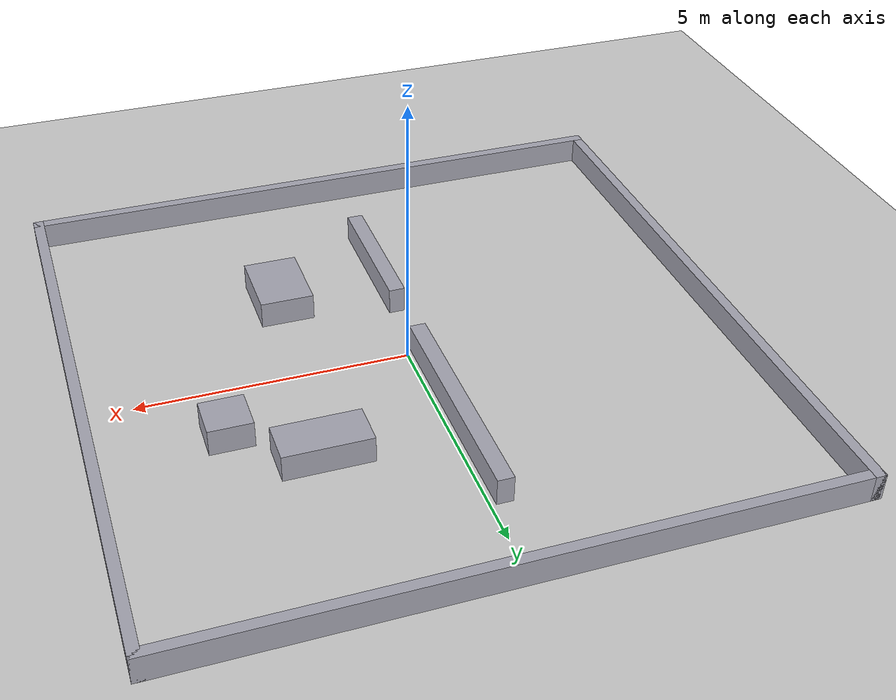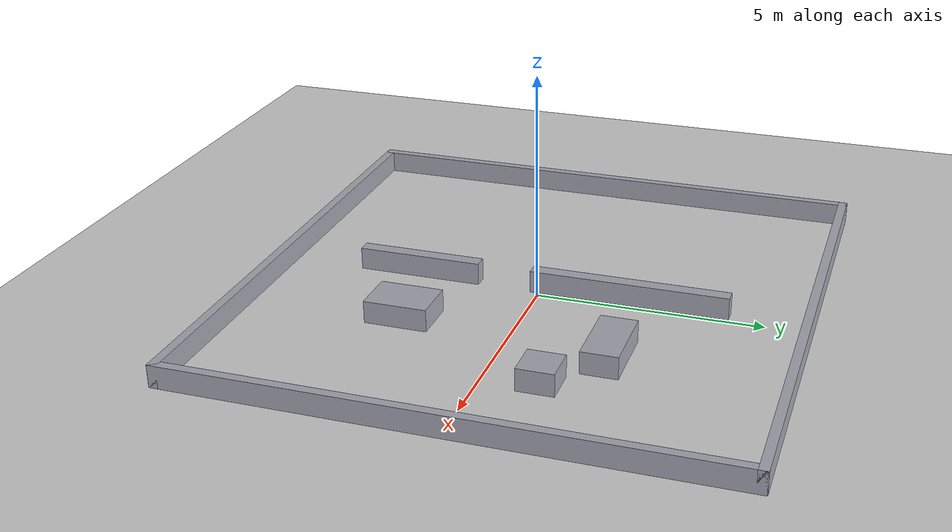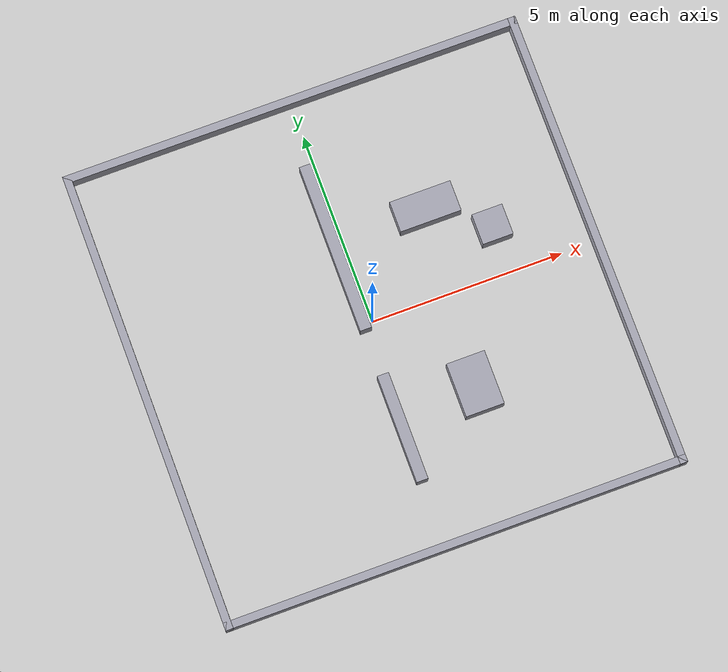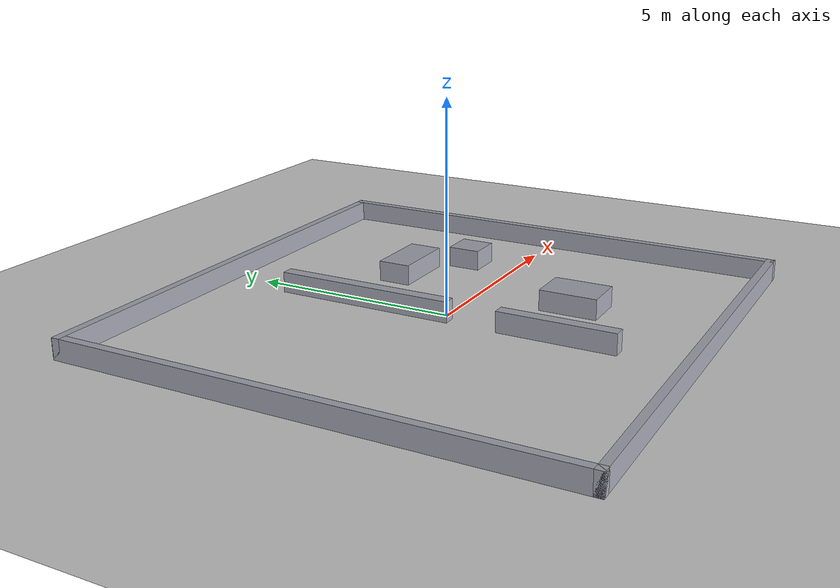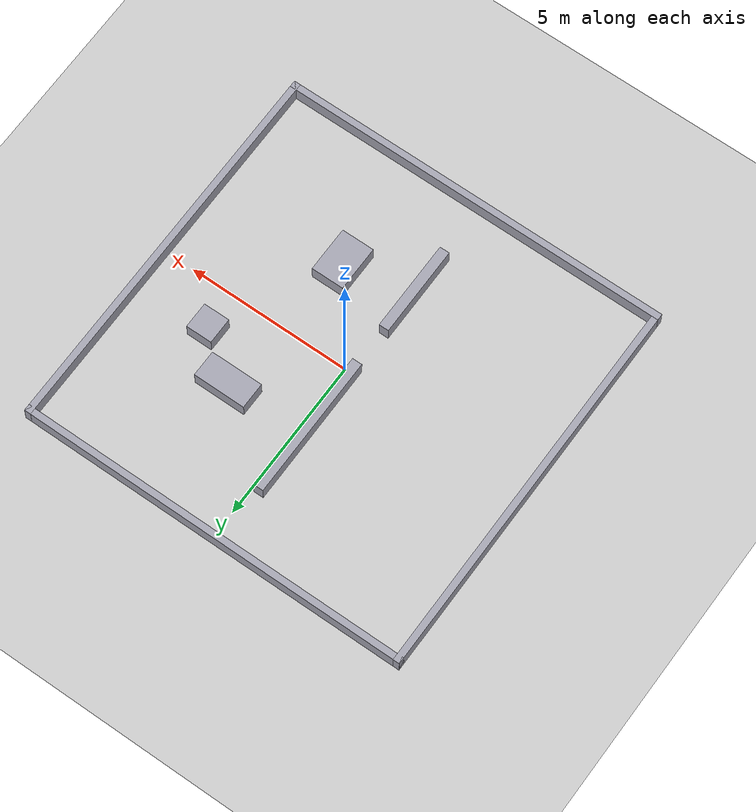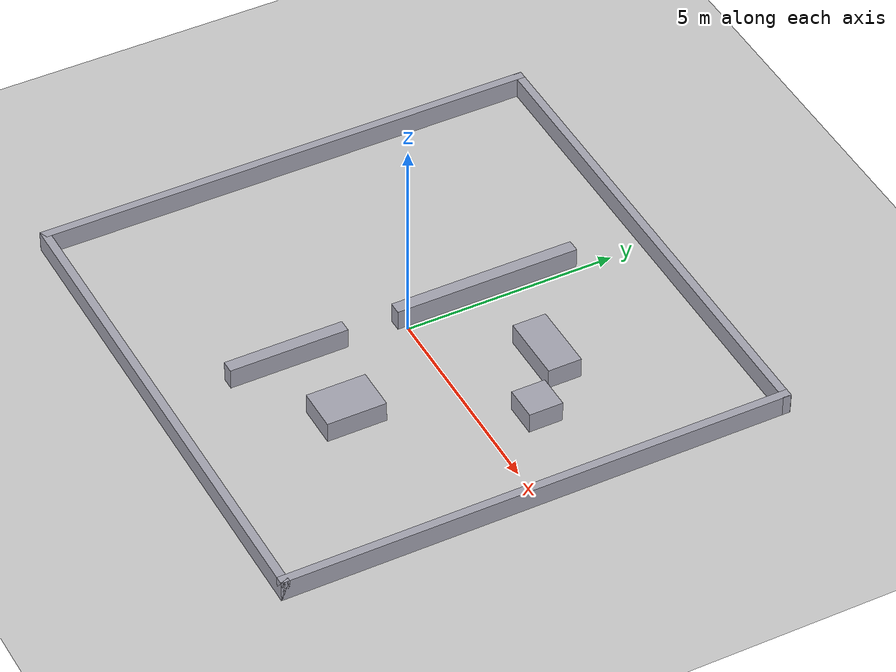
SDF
<?xml version="1.0" ?>
<sdf version="1.6">
  <world name="default">
    <include><uri>model://sun</uri></include>
    <include><uri>model://ground_plane</uri></include>
    <physics type="ode">
      <max_step_size>0.001</max_step_size>
      <real_time_factor>1.0</real_time_factor>
      <real_time_update_rate>1000</real_time_update_rate>
    </physics>
    <scene><ambient>0.7 0.7 0.7 1</ambient><background>0.85 0.87 0.90 1</background></scene>
    <model name="wall_bottom">
      <static>true</static>
      <pose>0.0 -5.9 0.25 0 0 0</pose>
      <link name="link">
        <collision name="collision">
          <geometry><box><size>12.0 0.2 0.5</size></box></geometry>
        </collision>
        <visual name="visual">
          <geometry><box><size>12.0 0.2 0.5</size></box></geometry>
          <material><ambient>0.55 0.55 0.60 1</ambient><diffuse>0.65 0.65 0.70 1</diffuse></material>
        </visual>
      </link>
    </model>
    <model name="wall_top">
      <static>true</static>
      <pose>0.0 5.9 0.25 0 0 0</pose>
      <link name="link">
        <collision name="collision">
          <geometry><box><size>12.0 0.2 0.5</size></box></geometry>
        </collision>
        <visual name="visual">
          <geometry><box><size>12.0 0.2 0.5</size></box></geometry>
          <material><ambient>0.55 0.55 0.60 1</ambient><diffuse>0.65 0.65 0.70 1</diffuse></material>
        </visual>
      </link>
    </model>
    <model name="wall_west">
      <static>true</static>
      <pose>-5.9 0.0 0.25 0 0 0</pose>
      <link name="link">
        <collision name="collision">
          <geometry><box><size>0.2 12.0 0.5</size></box></geometry>
        </collision>
        <visual name="visual">
          <geometry><box><size>0.2 12.0 0.5</size></box></geometry>
          <material><ambient>0.55 0.55 0.60 1</ambient><diffuse>0.65 0.65 0.70 1</diffuse></material>
        </visual>
      </link>
    </model>
    <model name="wall_east">
      <static>true</static>
      <pose>5.9 0.0 0.25 0 0 0</pose>
      <link name="link">
        <collision name="collision">
          <geometry><box><size>0.2 12.0 0.5</size></box></geometry>
        </collision>
        <visual name="visual">
          <geometry><box><size>0.2 12.0 0.5</size></box></geometry>
          <material><ambient>0.55 0.55 0.60 1</ambient><diffuse>0.65 0.65 0.70 1</diffuse></material>
        </visual>
      </link>
    </model>
    <model name="wall_left">
      <static>true</static>
      <pose>-0.25 -2.8 0.25 0 0 0</pose>
      <link name="link">
        <collision name="collision">
          <geometry><box><size>0.3 2.8 0.5</size></box></geometry>
        </collision>
        <visual name="visual">
          <geometry><box><size>0.3 2.8 0.5</size></box></geometry>
          <material><ambient>0.55 0.55 0.60 1</ambient><diffuse>0.65 0.65 0.70 1</diffuse></material>
        </visual>
      </link>
    </model>
    <model name="wall_right">
      <static>true</static>
      <pose>-0.25 2.0 0.25 0 0 0</pose>
      <link name="link">
        <collision name="collision">
          <geometry><box><size>0.3 4.4 0.5</size></box></geometry>
        </collision>
        <visual name="visual">
          <geometry><box><size>0.3 4.4 0.5</size></box></geometry>
          <material><ambient>0.55 0.55 0.60 1</ambient><diffuse>0.65 0.65 0.70 1</diffuse></material>
        </visual>
      </link>
    </model>
    <model name="box_east">
      <static>true</static>
      <pose>2.2 2.2 0.25 0 0 0</pose>
      <link name="link">
        <collision name="collision">
          <geometry><box><size>1.6 0.8 0.5</size></box></geometry>
        </collision>
        <visual name="visual">
          <geometry><box><size>1.6 0.8 0.5</size></box></geometry>
          <material><ambient>0.55 0.55 0.60 1</ambient><diffuse>0.65 0.65 0.70 1</diffuse></material>
        </visual>
      </link>
    </model>
    <model name="box_north">
      <static>true</static>
      <pose>1.8 -2.4 0.25 0 0 0</pose>
      <link name="link">
        <collision name="collision">
          <geometry><box><size>1.0 1.4 0.5</size></box></geometry>
        </collision>
        <visual name="visual">
          <geometry><box><size>1.0 1.4 0.5</size></box></geometry>
          <material><ambient>0.55 0.55 0.60 1</ambient><diffuse>0.65 0.65 0.70 1</diffuse></material>
        </visual>
      </link>
    </model>
    <model name="box_south">
      <static>true</static>
      <pose>3.6 1.2 0.25 0 0 0</pose>
      <link name="link">
        <collision name="collision">
          <geometry><box><size>0.8 0.8 0.5</size></box></geometry>
        </collision>
        <visual name="visual">
          <geometry><box><size>0.8 0.8 0.5</size></box></geometry>
          <material><ambient>0.55 0.55 0.60 1</ambient><diffuse>0.65 0.65 0.70 1</diffuse></material>
        </visual>
      </link>
    </model>
  </world>
</sdf>
